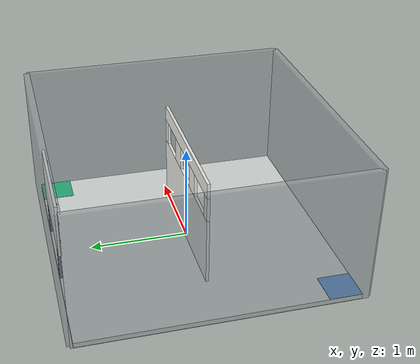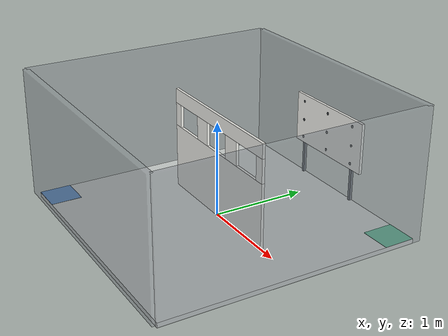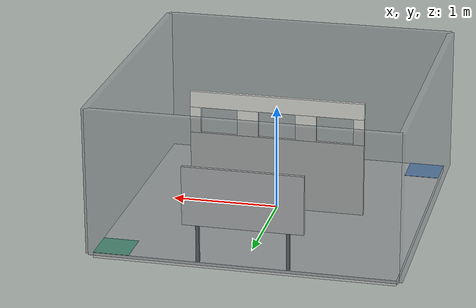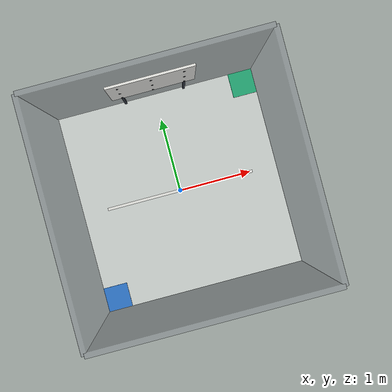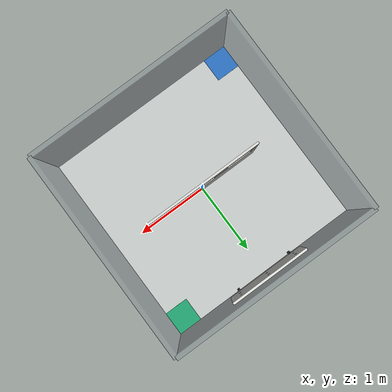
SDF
<?xml version='1.0' encoding='utf-8'?>
<sdf version="1.6">
  <world name="tello_final">
    <gravity>0 0 -9.80665</gravity>
    <physics name="ode" type="ode">
      <max_step_size>0.001</max_step_size>
      <real_time_update_rate>1000</real_time_update_rate>
    </physics>
    <light name="sun" type="directional">
      <cast_shadows>true</cast_shadows>
      <pose>0 0 10 0 0 0</pose>
      <diffuse>0.8 0.8 0.8 1</diffuse>
      <specular>0.2 0.2 0.2 1</specular>
      <attenuation><range>1000</range><constant>0.9</constant><linear>0.01</linear><quadratic>0.001</quadratic></attenuation>
      <direction>-0.5 0.1 -0.9</direction>
    </light>
    <model name="floor">
      <static>true</static>
      <pose>0.000000 0.000000 -0.025000 0.000000 0.000000 0.000000</pose>
      <link name="body">
        <collision name="collision">
          <geometry>
            <box>
              <size>2.750000 2.750000 0.050000</size>
            </box>
          </geometry>
        </collision>
        <visual name="visual">
          <geometry>
            <box>
              <size>2.750000 2.750000 0.050000</size>
            </box>
          </geometry>
          <material>
            <ambient>0.840000 0.860000 0.850000 1.000000</ambient>
            <diffuse>0.840000 0.860000 0.850000 1.000000</diffuse>
          </material>
        </visual>
      </link>
    </model>
    <model name="boundary_south">
      <static>true</static>
      <pose>0.000000 -1.405000 0.690000 0.000000 0.000000 0.000000</pose>
      <link name="body">
        <collision name="collision">
          <geometry>
            <box>
              <size>2.810000 0.060000 1.380000</size>
            </box>
          </geometry>
        </collision>
        <visual name="visual">
          <geometry>
            <box>
              <size>2.810000 0.060000 1.380000</size>
            </box>
          </geometry>
          <transparency>0.45</transparency>
          <material>
            <ambient>0.580000 0.610000 0.630000 0.550000</ambient>
            <diffuse>0.580000 0.610000 0.630000 0.550000</diffuse>
          </material>
        </visual>
      </link>
    </model>
    <model name="boundary_north">
      <static>true</static>
      <pose>0.000000 1.405000 0.690000 0.000000 0.000000 0.000000</pose>
      <link name="body">
        <collision name="collision">
          <geometry>
            <box>
              <size>2.810000 0.060000 1.380000</size>
            </box>
          </geometry>
        </collision>
        <visual name="visual">
          <geometry>
            <box>
              <size>2.810000 0.060000 1.380000</size>
            </box>
          </geometry>
          <transparency>0.45</transparency>
          <material>
            <ambient>0.580000 0.610000 0.630000 0.550000</ambient>
            <diffuse>0.580000 0.610000 0.630000 0.550000</diffuse>
          </material>
        </visual>
      </link>
    </model>
    <model name="boundary_west">
      <static>true</static>
      <pose>-1.405000 0.000000 0.690000 0.000000 0.000000 0.000000</pose>
      <link name="body">
        <collision name="collision">
          <geometry>
            <box>
              <size>0.060000 2.810000 1.380000</size>
            </box>
          </geometry>
        </collision>
        <visual name="visual">
          <geometry>
            <box>
              <size>0.060000 2.810000 1.380000</size>
            </box>
          </geometry>
          <transparency>0.45</transparency>
          <material>
            <ambient>0.580000 0.610000 0.630000 0.550000</ambient>
            <diffuse>0.580000 0.610000 0.630000 0.550000</diffuse>
          </material>
        </visual>
      </link>
    </model>
    <model name="boundary_east">
      <static>true</static>
      <pose>1.405000 0.000000 0.690000 0.000000 0.000000 0.000000</pose>
      <link name="body">
        <collision name="collision">
          <geometry>
            <box>
              <size>0.060000 2.810000 1.380000</size>
            </box>
          </geometry>
        </collision>
        <visual name="visual">
          <geometry>
            <box>
              <size>0.060000 2.810000 1.380000</size>
            </box>
          </geometry>
          <transparency>0.45</transparency>
          <material>
            <ambient>0.580000 0.610000 0.630000 0.550000</ambient>
            <diffuse>0.580000 0.610000 0.630000 0.550000</diffuse>
          </material>
        </visual>
      </link>
    </model>
    <model name="takeoff_pad">
      <static>true</static>
      <pose>-1.210000 -1.210000 0.001000 0.000000 0.000000 0.000000</pose>
      <link name="body">
        <visual name="visual">
          <geometry>
            <box>
              <size>0.330000 0.330000 0.002000</size>
            </box>
          </geometry>
          <material>
            <ambient>0.190000 0.480000 0.820000 1.000000</ambient>
            <diffuse>0.190000 0.480000 0.820000 1.000000</diffuse>
          </material>
        </visual>
      </link>
    </model>
    <model name="landing_pad">
      <static>true</static>
      <pose>1.210000 1.210000 0.001000 0.000000 0.000000 0.000000</pose>
      <link name="body">
        <visual name="visual">
          <geometry>
            <box>
              <size>0.330000 0.330000 0.002000</size>
            </box>
          </geometry>
          <material>
            <ambient>0.150000 0.690000 0.480000 1.000000</ambient>
            <diffuse>0.150000 0.690000 0.480000 1.000000</diffuse>
          </material>
        </visual>
      </link>
    </model>
    <model name="window_wall_bottom">
      <static>true</static>
      <pose>0.000000 0.000000 0.347500 0.000000 0.000000 0.000000</pose>
      <link name="body">
        <collision name="collision">
          <geometry>
            <box>
              <size>1.650000 0.030000 0.695000</size>
            </box>
          </geometry>
        </collision>
        <visual name="visual">
          <geometry>
            <box>
              <size>1.650000 0.030000 0.695000</size>
            </box>
          </geometry>
          <material>
            <ambient>0.930000 0.930000 0.910000 1.000000</ambient>
            <diffuse>0.930000 0.930000 0.910000 1.000000</diffuse>
          </material>
        </visual>
      </link>
    </model>
    <model name="window_wall_top">
      <static>true</static>
      <pose>0.000000 0.000000 1.022500 0.000000 0.000000 0.000000</pose>
      <link name="body">
        <collision name="collision">
          <geometry>
            <box>
              <size>1.650000 0.030000 0.155000</size>
            </box>
          </geometry>
        </collision>
        <visual name="visual">
          <geometry>
            <box>
              <size>1.650000 0.030000 0.155000</size>
            </box>
          </geometry>
          <material>
            <ambient>0.930000 0.930000 0.910000 1.000000</ambient>
            <diffuse>0.930000 0.930000 0.910000 1.000000</diffuse>
          </material>
        </visual>
      </link>
    </model>
    <model name="window_post_0">
      <static>true</static>
      <pose>-0.775000 0.000000 0.820000 0.000000 0.000000 0.000000</pose>
      <link name="body">
        <collision name="collision">
          <geometry>
            <box>
              <size>0.100000 0.030000 0.250000</size>
            </box>
          </geometry>
        </collision>
        <visual name="visual">
          <geometry>
            <box>
              <size>0.100000 0.030000 0.250000</size>
            </box>
          </geometry>
          <material>
            <ambient>0.930000 0.930000 0.910000 1.000000</ambient>
            <diffuse>0.930000 0.930000 0.910000 1.000000</diffuse>
          </material>
        </visual>
      </link>
    </model>
    <model name="window_post_1">
      <static>true</static>
      <pose>-0.275000 0.000000 0.820000 0.000000 0.000000 0.000000</pose>
      <link name="body">
        <collision name="collision">
          <geometry>
            <box>
              <size>0.200000 0.030000 0.250000</size>
            </box>
          </geometry>
        </collision>
        <visual name="visual">
          <geometry>
            <box>
              <size>0.200000 0.030000 0.250000</size>
            </box>
          </geometry>
          <material>
            <ambient>0.930000 0.930000 0.910000 1.000000</ambient>
            <diffuse>0.930000 0.930000 0.910000 1.000000</diffuse>
          </material>
        </visual>
      </link>
    </model>
    <model name="window_post_2">
      <static>true</static>
      <pose>0.275000 0.000000 0.820000 0.000000 0.000000 0.000000</pose>
      <link name="body">
        <collision name="collision">
          <geometry>
            <box>
              <size>0.200000 0.030000 0.250000</size>
            </box>
          </geometry>
        </collision>
        <visual name="visual">
          <geometry>
            <box>
              <size>0.200000 0.030000 0.250000</size>
            </box>
          </geometry>
          <material>
            <ambient>0.930000 0.930000 0.910000 1.000000</ambient>
            <diffuse>0.930000 0.930000 0.910000 1.000000</diffuse>
          </material>
        </visual>
      </link>
    </model>
    <model name="window_post_3">
      <static>true</static>
      <pose>0.775000 0.000000 0.820000 0.000000 0.000000 0.000000</pose>
      <link name="body">
        <collision name="collision">
          <geometry>
            <box>
              <size>0.100000 0.030000 0.250000</size>
            </box>
          </geometry>
        </collision>
        <visual name="visual">
          <geometry>
            <box>
              <size>0.100000 0.030000 0.250000</size>
            </box>
          </geometry>
          <material>
            <ambient>0.930000 0.930000 0.910000 1.000000</ambient>
            <diffuse>0.930000 0.930000 0.910000 1.000000</diffuse>
          </material>
        </visual>
      </link>
    </model>
    <model name="whiteboard">
      <static>true</static>
      <pose>0.000000 1.360000 0.625000 0.000000 0.000000 0.000000</pose>
      <link name="body">
        <collision name="collision">
          <geometry>
            <box>
              <size>1.100000 0.030000 0.550000</size>
            </box>
          </geometry>
        </collision>
        <visual name="visual">
          <geometry>
            <box>
              <size>1.100000 0.030000 0.550000</size>
            </box>
          </geometry>
          <material>
            <ambient>0.960000 0.960000 0.940000 1.000000</ambient>
            <diffuse>0.960000 0.960000 0.940000 1.000000</diffuse>
          </material>
        </visual>
      </link>
    </model>
    <model name="board_leg_-0.75">
      <static>true</static>
      <pose>-0.410000 1.360000 0.175000 0.000000 0.000000 0.000000</pose>
      <link name="body">
        <collision name="collision">
          <geometry>
            <box>
              <size>0.030000 0.030000 0.350000</size>
            </box>
          </geometry>
        </collision>
        <visual name="visual">
          <geometry>
            <box>
              <size>0.030000 0.030000 0.350000</size>
            </box>
          </geometry>
          <material>
            <ambient>0.220000 0.250000 0.290000 1.000000</ambient>
            <diffuse>0.220000 0.250000 0.290000 1.000000</diffuse>
          </material>
        </visual>
      </link>
    </model>
    <model name="board_leg_0.75">
      <static>true</static>
      <pose>0.410000 1.360000 0.175000 0.000000 0.000000 0.000000</pose>
      <link name="body">
        <collision name="collision">
          <geometry>
            <box>
              <size>0.030000 0.030000 0.350000</size>
            </box>
          </geometry>
        </collision>
        <visual name="visual">
          <geometry>
            <box>
              <size>0.030000 0.030000 0.350000</size>
            </box>
          </geometry>
          <material>
            <ambient>0.220000 0.250000 0.290000 1.000000</ambient>
            <diffuse>0.220000 0.250000 0.290000 1.000000</diffuse>
          </material>
        </visual>
      </link>
    </model>
    <model name="lamp_socket_0">
      <static>true</static>
      <pose>-0.410000 1.333000 0.830000 1.570796 0.000000 0.000000</pose>
      <link name="body">
        <visual name="visual">
          <geometry>
            <cylinder>
              <radius>0.015000</radius>
              <length>0.002</length>
            </cylinder>
          </geometry>
          <material>
            <ambient>0.250000 0.270000 0.290000 1.000000</ambient>
            <diffuse>0.250000 0.270000 0.290000 1.000000</diffuse>
          </material>
        </visual>
      </link>
    </model>
    <model name="lamp_socket_1">
      <static>true</static>
      <pose>-0.410000 1.333000 0.620000 1.570796 0.000000 0.000000</pose>
      <link name="body">
        <visual name="visual">
          <geometry>
            <cylinder>
              <radius>0.015000</radius>
              <length>0.002</length>
            </cylinder>
          </geometry>
          <material>
            <ambient>0.250000 0.270000 0.290000 1.000000</ambient>
            <diffuse>0.250000 0.270000 0.290000 1.000000</diffuse>
          </material>
        </visual>
      </link>
    </model>
    <model name="lamp_socket_2">
      <static>true</static>
      <pose>-0.410000 1.333000 0.420000 1.570796 0.000000 0.000000</pose>
      <link name="body">
        <visual name="visual">
          <geometry>
            <cylinder>
              <radius>0.015000</radius>
              <length>0.002</length>
            </cylinder>
          </geometry>
          <material>
            <ambient>0.250000 0.270000 0.290000 1.000000</ambient>
            <diffuse>0.250000 0.270000 0.290000 1.000000</diffuse>
          </material>
        </visual>
      </link>
    </model>
    <model name="lamp_socket_3">
      <static>true</static>
      <pose>0.000000 1.333000 0.830000 1.570796 0.000000 0.000000</pose>
      <link name="body">
        <visual name="visual">
          <geometry>
            <cylinder>
              <radius>0.015000</radius>
              <length>0.002</length>
            </cylinder>
          </geometry>
          <material>
            <ambient>0.250000 0.270000 0.290000 1.000000</ambient>
            <diffuse>0.250000 0.270000 0.290000 1.000000</diffuse>
          </material>
        </visual>
      </link>
    </model>
    <model name="lamp_socket_4">
      <static>true</static>
      <pose>0.000000 1.333000 0.620000 1.570796 0.000000 0.000000</pose>
      <link name="body">
        <visual name="visual">
          <geometry>
            <cylinder>
              <radius>0.015000</radius>
              <length>0.002</length>
            </cylinder>
          </geometry>
          <material>
            <ambient>0.250000 0.270000 0.290000 1.000000</ambient>
            <diffuse>0.250000 0.270000 0.290000 1.000000</diffuse>
          </material>
        </visual>
      </link>
    </model>
    <model name="lamp_socket_5">
      <static>true</static>
      <pose>0.000000 1.333000 0.420000 1.570796 0.000000 0.000000</pose>
      <link name="body">
        <visual name="visual">
          <geometry>
            <cylinder>
              <radius>0.015000</radius>
              <length>0.002</length>
            </cylinder>
          </geometry>
          <material>
            <ambient>0.250000 0.270000 0.290000 1.000000</ambient>
            <diffuse>0.250000 0.270000 0.290000 1.000000</diffuse>
          </material>
        </visual>
      </link>
    </model>
    <model name="lamp_socket_6">
      <static>true</static>
      <pose>0.410000 1.333000 0.830000 1.570796 0.000000 0.000000</pose>
      <link name="body">
        <visual name="visual">
          <geometry>
            <cylinder>
              <radius>0.015000</radius>
              <length>0.002</length>
            </cylinder>
          </geometry>
          <material>
            <ambient>0.250000 0.270000 0.290000 1.000000</ambient>
            <diffuse>0.250000 0.270000 0.290000 1.000000</diffuse>
          </material>
        </visual>
      </link>
    </model>
    <model name="lamp_socket_7">
      <static>true</static>
      <pose>0.410000 1.333000 0.620000 1.570796 0.000000 0.000000</pose>
      <link name="body">
        <visual name="visual">
          <geometry>
            <cylinder>
              <radius>0.015000</radius>
              <length>0.002</length>
            </cylinder>
          </geometry>
          <material>
            <ambient>0.250000 0.270000 0.290000 1.000000</ambient>
            <diffuse>0.250000 0.270000 0.290000 1.000000</diffuse>
          </material>
        </visual>
      </link>
    </model>
    <model name="lamp_socket_8">
      <static>true</static>
      <pose>0.410000 1.333000 0.420000 1.570796 0.000000 0.000000</pose>
      <link name="body">
        <visual name="visual">
          <geometry>
            <cylinder>
              <radius>0.015000</radius>
              <length>0.002</length>
            </cylinder>
          </geometry>
          <material>
            <ambient>0.250000 0.270000 0.290000 1.000000</ambient>
            <diffuse>0.250000 0.270000 0.290000 1.000000</diffuse>
          </material>
        </visual>
      </link>
    </model>
  </world>
</sdf>
